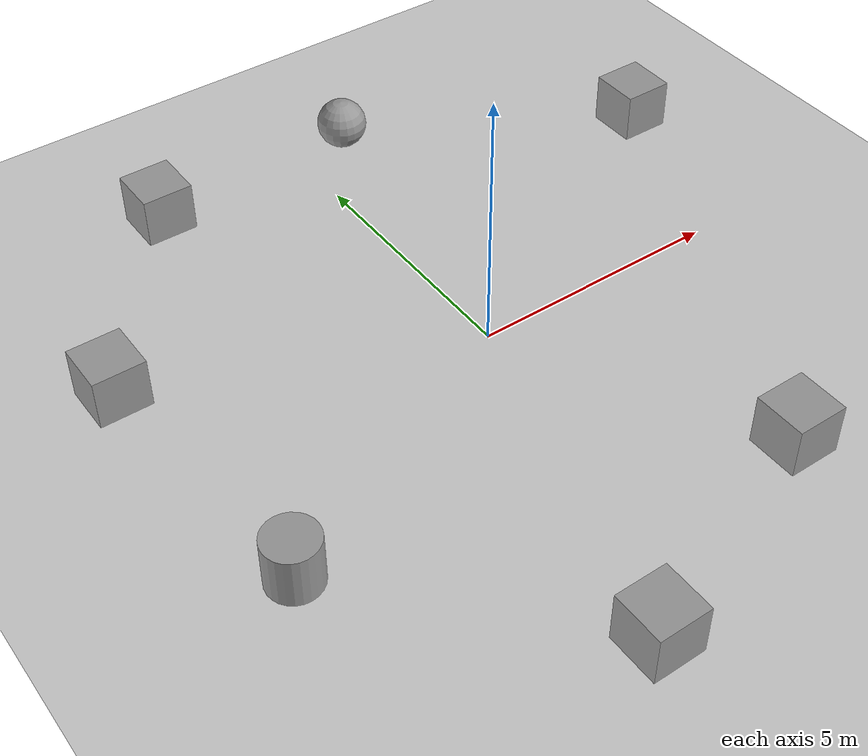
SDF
<sdf version="1.7">
 <world name="default">
  <light name="sun" type="directional">
   <pose>0 0 10 0 -0 0</pose>
   <diffuse>0.8 0.8 0.8 1</diffuse>
   <specular>0.2 0.2 0.2 1</specular>
   <attenuation>
    <range>1000</range>
    <constant>0.9</constant>
    <linear>0.01</linear>
    <quadratic>0.001</quadratic>
   </attenuation>
   <direction>-0.5 0.1 -0.9</direction>
   <spot><inner_angle>0</inner_angle><outer_angle>0</outer_angle><falloff>0</falloff></spot>
  </light>
  <model name="ground_plane">
   <static>1</static>
   <link name="link">
    <collision name="collision">
     <geometry><plane><normal>0 0 1</normal><size>100 100</size></plane></geometry>
     <surface>
      <contact><collide_bitmask>65535</collide_bitmask></contact>
      <friction><ode><mu>100</mu><mu2>50</mu2></ode></friction>
     </surface>
    </collision>
    <visual name="visual">
     <cast_shadows>0</cast_shadows>
     <geometry><plane><normal>0 0 1</normal><size>100 100</size></plane></geometry>
     <material>
      <script><uri>file://media/materials/scripts/gazebo.material</uri><name>Gazebo/Grey</name></script>
     </material>
    </visual>
   </link>
  </model>
  <gravity>0 0 -9.8</gravity>
  <magnetic_field>6e-06 2.3e-05 -4.2e-05</magnetic_field>
  <atmosphere type="adiabatic"/>
  <physics type="ode">
   <max_step_size>0.001</max_step_size>
   <real_time_factor>1</real_time_factor>
   <real_time_update_rate>1000</real_time_update_rate>
  </physics>
  <scene><ambient>0.4 0.4 0.4 1</ambient><background>0.7 0.7 0.7 1</background><shadows>1</shadows></scene>
  <spherical_coordinates>
   <surface_model>EARTH_WGS84</surface_model>
   <latitude_deg>0</latitude_deg>
   <longitude_deg>0</longitude_deg>
   <elevation>0</elevation>
   <heading_deg>0</heading_deg>
  </spherical_coordinates>
  <model name="unit_sphere">
   <pose>1.06056 6.44609 0.5 0 -0 0</pose>
   <link name="link">
    <inertial>
     <mass>1</mass>
     <inertia><ixx>0.1</ixx><ixy>0</ixy><ixz>0</ixz><iyy>0.1</iyy><iyz>0</iyz><izz>0.1</izz></inertia>
    </inertial>
    <collision name="collision"><geometry><sphere><radius>0.5</radius></sphere></geometry></collision>
    <visual name="visual">
     <geometry><sphere><radius>0.5</radius></sphere></geometry>
     <material>
      <script><name>Gazebo/Grey</name><uri>file://media/materials/scripts/gazebo.material</uri></script>
     </material>
    </visual>
   </link>
  </model>
  <model name="unit_box">
   <pose>-6.13461 2.49072 0.5 0 -0 0</pose>
   <link name="link">
    <inertial>
     <mass>1</mass>
     <inertia>
      <ixx>0.166667</ixx>
      <ixy>0</ixy>
      <ixz>0</ixz>
      <iyy>0.166667</iyy>
      <iyz>0</iyz>
      <izz>0.166667</izz>
     </inertia>
    </inertial>
    <collision name="collision"><geometry><box><size>1 1 1</size></box></geometry></collision>
    <visual name="visual">
     <geometry><box><size>1 1 1</size></box></geometry>
     <material>
      <script><name>Gazebo/Grey</name><uri>file://media/materials/scripts/gazebo.material</uri></script>
     </material>
    </visual>
   </link>
  </model>
  <model name="unit_cylinder">
   <pose>-5.64262 -2.61635 0.5 0 -0 0</pose>
   <link name="link">
    <inertial>
     <mass>1</mass>
     <inertia><ixx>0.145833</ixx><ixy>0</ixy><ixz>0</ixz><iyy>0.145833</iyy><iyz>0</iyz><izz>0.125</izz></inertia>
    </inertial>
    <collision name="collision">
     <geometry><cylinder><radius>0.5</radius><length>1</length></cylinder></geometry>
    </collision>
    <visual name="visual">
     <geometry><cylinder><radius>0.5</radius><length>1</length></cylinder></geometry>
     <material>
      <script><name>Gazebo/Grey</name><uri>file://media/materials/scripts/gazebo.material</uri></script>
     </material>
    </visual>
   </link>
  </model>
  <model name="unit_box_0">
   <pose>2.52803 -5.05256 0.5 0 -0 0</pose>
   <link name="link">
    <inertial>
     <mass>1</mass>
     <inertia>
      <ixx>0.166667</ixx>
      <ixy>0</ixy>
      <ixz>0</ixz>
      <iyy>0.166667</iyy>
      <iyz>0</iyz>
      <izz>0.166667</izz>
     </inertia>
    </inertial>
    <collision name="collision"><geometry><box><size>1 1 1</size></box></geometry></collision>
    <visual name="visual">
     <geometry><box><size>1 1 1</size></box></geometry>
     <material>
      <script><name>Gazebo/Grey</name><uri>file://media/materials/scripts/gazebo.material</uri></script>
     </material>
    </visual>
   </link>
  </model>
  <model name="unit_box_1">
   <pose>6.40321 3.59281 0.5 0 -0 0</pose>
   <link name="link">
    <inertial>
     <mass>1</mass>
     <inertia>
      <ixx>0.166667</ixx>
      <ixy>0</ixy>
      <ixz>0</ixz>
      <iyy>0.166667</iyy>
      <iyz>0</iyz>
      <izz>0.166667</izz>
     </inertia>
    </inertial>
    <collision name="collision"><geometry><box><size>1 1 1</size></box></geometry></collision>
    <visual name="visual">
     <geometry><box><size>1 1 1</size></box></geometry>
     <material>
      <script><name>Gazebo/Grey</name><uri>file://media/materials/scripts/gazebo.material</uri></script>
     </material>
    </visual>
   </link>
  </model>
  <model name="unit_box_2">
   <pose>-3.22834 6.28145 0.5 0 -0 0</pose>
   <link name="link">
    <inertial>
     <mass>1</mass>
     <inertia>
      <ixx>0.166667</ixx>
      <ixy>0</ixy>
      <ixz>0</ixz>
      <iyy>0.166667</iyy>
      <iyz>0</iyz>
      <izz>0.166667</izz>
     </inertia>
    </inertial>
    <collision name="collision"><geometry><box><size>1 1 1</size></box></geometry></collision>
    <visual name="visual">
     <geometry><box><size>1 1 1</size></box></geometry>
     <material>
      <script><name>Gazebo/Grey</name><uri>file://media/materials/scripts/gazebo.material</uri></script>
     </material>
    </visual>
   </link>
  </model>
  <model name="unit_box_3">
   <pose>-1.93088 -6.72097 0.5 0 -0 0</pose>
   <link name="link">
    <inertial>
     <mass>1</mass>
     <inertia>
      <ixx>0.166667</ixx>
      <ixy>0</ixy>
      <ixz>0</ixz>
      <iyy>0.166667</iyy>
      <iyz>0</iyz>
      <izz>0.166667</izz>
     </inertia>
    </inertial>
    <collision name="collision"><geometry><box><size>1 1 1</size></box></geometry></collision>
    <visual name="visual">
     <geometry><box><size>1 1 1</size></box></geometry>
     <material>
      <script><name>Gazebo/Grey</name><uri>file://media/materials/scripts/gazebo.material</uri></script>
     </material>
    </visual>
   </link>
  </model>
 </world>
</sdf>
